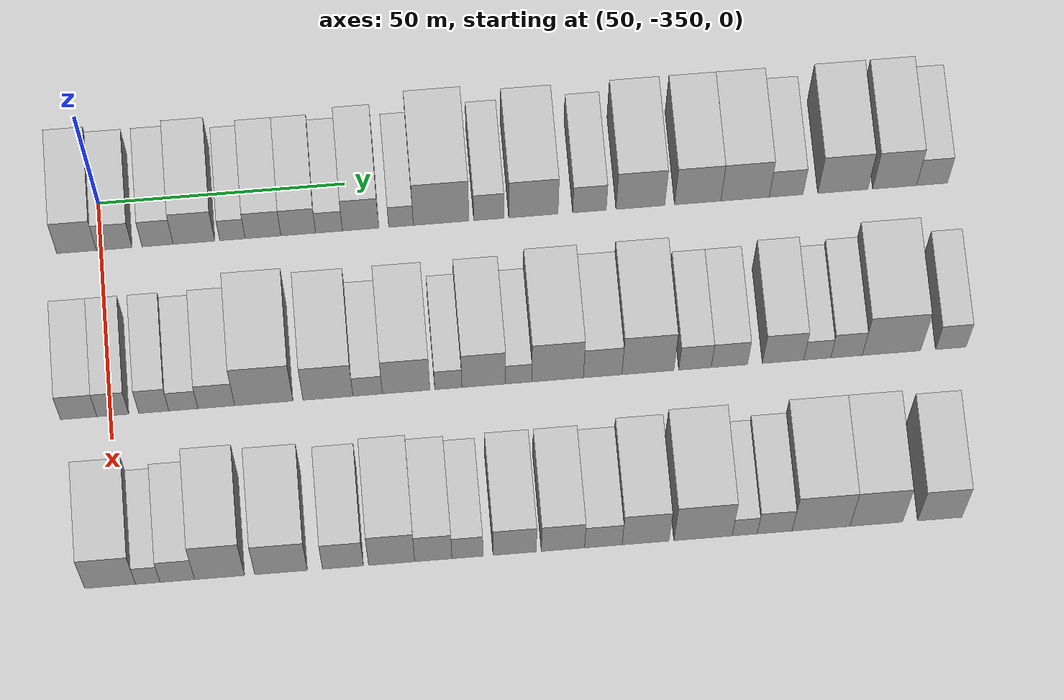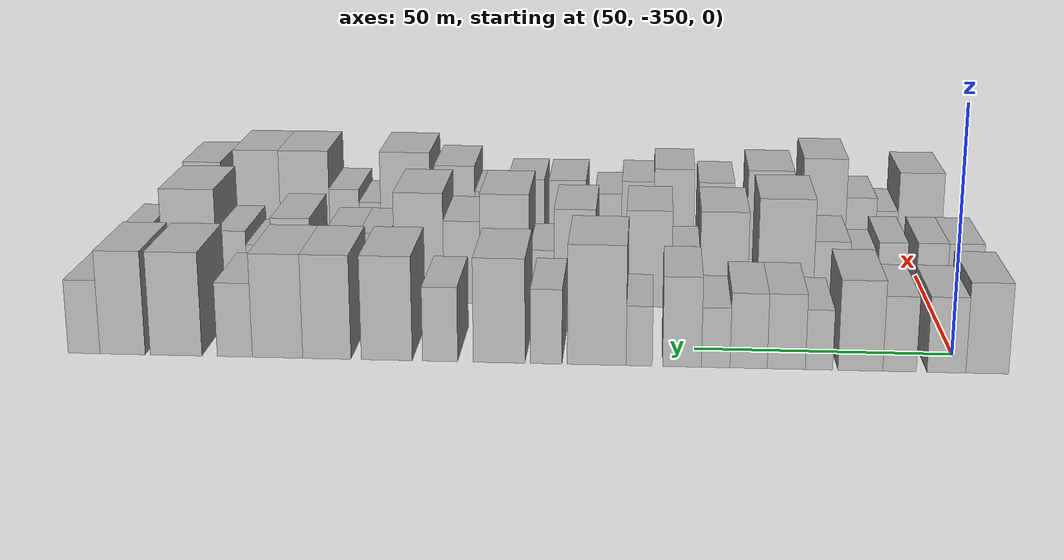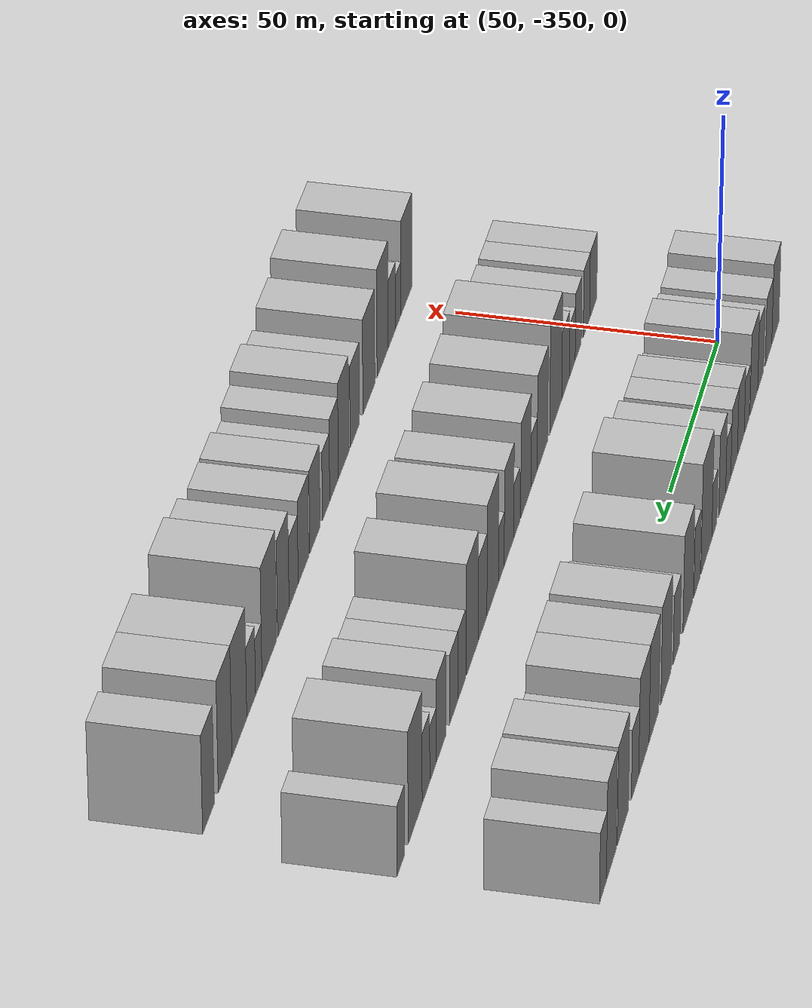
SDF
<sdf version="1.6">
 <world name="default">
  <model name="building_1">
   <static>1</static>
   <pose>50.0000 -355.0018 0 0.000000 0.000000 0.000000</pose>
   <link name="link">
    <pose>0 0 9.00 0 0 0</pose>
    <collision name="collision"><geometry><box><size>20.0000 7.9964 18.0000</size></box></geometry></collision>
    <visual name="visual">
     <cast_shadows>0</cast_shadows>
     <geometry><box><size>20.0000 7.9964 18.0000</size></box></geometry>
     <material>
      <script>
       <uri>model://HANNAS_wall/materials/scripts</uri>
       <uri>model://HANNAS_wall/materials/textures</uri>
       <name>vrc/HANNAS_wall</name>
      </script>
     </material>
    </visual>
   </link>
  </model>
  <model name="building_2">
   <static>1</static>
   <pose>50.0000 -347.3747 0 0.000000 0.000000 0.000000</pose>
   <link name="link">
    <pose>0 0 7.50 0 0 0</pose>
    <collision name="collision"><geometry><box><size>20.0000 7.2579 15.0000</size></box></geometry></collision>
    <visual name="visual">
     <cast_shadows>0</cast_shadows>
     <geometry><box><size>20.0000 7.2579 15.0000</size></box></geometry>
     <material>
      <script>
       <uri>model://HANNAS_wall/materials/scripts</uri>
       <uri>model://HANNAS_wall/materials/textures</uri>
       <name>vrc/HANNAS_wall</name>
      </script>
     </material>
    </visual>
   </link>
  </model>
  <model name="building_3">
   <static>1</static>
   <pose>50.0000 -338.5936 0 0.000000 0.000000 0.000000</pose>
   <link name="link">
    <pose>0 0 7.50 0 0 0</pose>
    <collision name="collision"><geometry><box><size>20.0000 6.3044 15.0000</size></box></geometry></collision>
    <visual name="visual">
     <cast_shadows>0</cast_shadows>
     <geometry><box><size>20.0000 6.3044 15.0000</size></box></geometry>
     <material>
      <script>
       <uri>model://HANNAS_wall/materials/scripts</uri>
       <uri>model://HANNAS_wall/materials/textures</uri>
       <name>vrc/HANNAS_wall</name>
      </script>
     </material>
    </visual>
   </link>
  </model>
  <model name="building_4">
   <static>1</static>
   <pose>50.0000 -331.2195 0 0.000000 0.000000 0.000000</pose>
   <link name="link">
    <pose>0 0 9.00 0 0 0</pose>
    <collision name="collision"><geometry><box><size>20.0000 8.4436 18.0000</size></box></geometry></collision>
    <visual name="visual">
     <cast_shadows>0</cast_shadows>
     <geometry><box><size>20.0000 8.4436 18.0000</size></box></geometry>
     <material>
      <script>
       <uri>model://HANNAS_wall/materials/scripts</uri>
       <uri>model://HANNAS_wall/materials/textures</uri>
       <name>vrc/HANNAS_wall</name>
      </script>
     </material>
    </visual>
   </link>
  </model>
  <model name="building_5">
   <static>1</static>
   <pose>50.0000 -323.4171 0 0.000000 0.000000 0.000000</pose>
   <link name="link">
    <pose>0 0 6.00 0 0 0</pose>
    <collision name="collision"><geometry><box><size>20.0000 5.1612 12.0000</size></box></geometry></collision>
    <visual name="visual">
     <cast_shadows>0</cast_shadows>
     <geometry><box><size>20.0000 5.1612 12.0000</size></box></geometry>
     <material>
      <script>
       <uri>model://HANNAS_wall/materials/scripts</uri>
       <uri>model://HANNAS_wall/materials/textures</uri>
       <name>vrc/HANNAS_wall</name>
      </script>
     </material>
    </visual>
   </link>
  </model>
  <model name="building_6">
   <static>1</static>
   <pose>50.0000 -317.2213 0 0.000000 0.000000 0.000000</pose>
   <link name="link">
    <pose>0 0 7.50 0 0 0</pose>
    <collision name="collision"><geometry><box><size>20.0000 7.2306 15.0000</size></box></geometry></collision>
    <visual name="visual">
     <cast_shadows>0</cast_shadows>
     <geometry><box><size>20.0000 7.2306 15.0000</size></box></geometry>
     <material>
      <script>
       <uri>model://HANNAS_wall/materials/scripts</uri>
       <uri>model://HANNAS_wall/materials/textures</uri>
       <name>vrc/HANNAS_wall</name>
      </script>
     </material>
    </visual>
   </link>
  </model>
  <model name="building_7">
   <static>1</static>
   <pose>50.0000 -310.0777 0 0.000000 0.000000 0.000000</pose>
   <link name="link">
    <pose>0 0 7.50 0 0 0</pose>
    <collision name="collision"><geometry><box><size>20.0000 7.0565 15.0000</size></box></geometry></collision>
    <visual name="visual">
     <cast_shadows>0</cast_shadows>
     <geometry><box><size>20.0000 7.0565 15.0000</size></box></geometry>
     <material>
      <script>
       <uri>model://HANNAS_wall/materials/scripts</uri>
       <uri>model://HANNAS_wall/materials/textures</uri>
       <name>vrc/HANNAS_wall</name>
      </script>
     </material>
    </visual>
   </link>
  </model>
  <model name="building_8">
   <static>1</static>
   <pose>50.0000 -303.8232 0 0.000000 0.000000 0.000000</pose>
   <link name="link">
    <pose>0 0 6.00 0 0 0</pose>
    <collision name="collision"><geometry><box><size>20.0000 5.4526 12.0000</size></box></geometry></collision>
    <visual name="visual">
     <cast_shadows>0</cast_shadows>
     <geometry><box><size>20.0000 5.4526 12.0000</size></box></geometry>
     <material>
      <script>
       <uri>model://HANNAS_wall/materials/scripts</uri>
       <uri>model://HANNAS_wall/materials/textures</uri>
       <name>vrc/HANNAS_wall</name>
      </script>
     </material>
    </visual>
   </link>
  </model>
  <model name="building_9">
   <static>1</static>
   <pose>50.0000 -297.4114 0 0.000000 0.000000 0.000000</pose>
   <link name="link">
    <pose>0 0 9.00 0 0 0</pose>
    <collision name="collision"><geometry><box><size>20.0000 7.3710 18.0000</size></box></geometry></collision>
    <visual name="visual">
     <cast_shadows>0</cast_shadows>
     <geometry><box><size>20.0000 7.3710 18.0000</size></box></geometry>
     <material>
      <script>
       <uri>model://HANNAS_wall/materials/scripts</uri>
       <uri>model://HANNAS_wall/materials/textures</uri>
       <name>vrc/HANNAS_wall</name>
      </script>
     </material>
    </visual>
   </link>
  </model>
  <model name="building_10">
   <static>1</static>
   <pose>50.0000 -289.2260 0 0.000000 0.000000 0.000000</pose>
   <link name="link">
    <pose>0 0 6.00 0 0 0</pose>
    <collision name="collision"><geometry><box><size>20.0000 4.9998 12.0000</size></box></geometry></collision>
    <visual name="visual">
     <cast_shadows>0</cast_shadows>
     <geometry><box><size>20.0000 4.9998 12.0000</size></box></geometry>
     <material>
      <script>
       <uri>model://HANNAS_wall/materials/scripts</uri>
       <uri>model://HANNAS_wall/materials/textures</uri>
       <name>vrc/HANNAS_wall</name>
      </script>
     </material>
    </visual>
   </link>
  </model>
  <model name="building_11">
   <static>1</static>
   <pose>50.0000 -281.0882 0 0.000000 0.000000 0.000000</pose>
   <link name="link">
    <pose>0 0 12.00 0 0 0</pose>
    <collision name="collision"><geometry><box><size>20.0000 11.2757 24.0000</size></box></geometry></collision>
    <visual name="visual">
     <cast_shadows>0</cast_shadows>
     <geometry><box><size>20.0000 11.2757 24.0000</size></box></geometry>
     <material>
      <script>
       <uri>model://HANNAS_wall/materials/scripts</uri>
       <uri>model://HANNAS_wall/materials/textures</uri>
       <name>vrc/HANNAS_wall</name>
      </script>
     </material>
    </visual>
   </link>
  </model>
  <model name="building_12">
   <static>1</static>
   <pose>50.0000 -271.3896 0 0.000000 0.000000 0.000000</pose>
   <link name="link">
    <pose>0 0 7.50 0 0 0</pose>
    <collision name="collision"><geometry><box><size>20.0000 6.1216 15.0000</size></box></geometry></collision>
    <visual name="visual">
     <cast_shadows>0</cast_shadows>
     <geometry><box><size>20.0000 6.1216 15.0000</size></box></geometry>
     <material>
      <script>
       <uri>model://HANNAS_wall/materials/scripts</uri>
       <uri>model://HANNAS_wall/materials/textures</uri>
       <name>vrc/HANNAS_wall</name>
      </script>
     </material>
    </visual>
   </link>
  </model>
  <model name="building_13">
   <static>1</static>
   <pose>50.0000 -262.3247 0 0.000000 0.000000 0.000000</pose>
   <link name="link">
    <pose>0 0 10.50 0 0 0</pose>
    <collision name="collision"><geometry><box><size>20.0000 10.0081 21.0000</size></box></geometry></collision>
    <visual name="visual">
     <cast_shadows>0</cast_shadows>
     <geometry><box><size>20.0000 10.0081 21.0000</size></box></geometry>
     <material>
      <script>
       <uri>model://HANNAS_wall/materials/scripts</uri>
       <uri>model://HANNAS_wall/materials/textures</uri>
       <name>vrc/HANNAS_wall</name>
      </script>
     </material>
    </visual>
   </link>
  </model>
  <model name="building_14">
   <static>1</static>
   <pose>50.0000 -250.9115 0 0.000000 0.000000 0.000000</pose>
   <link name="link">
    <pose>0 0 7.50 0 0 0</pose>
    <collision name="collision"><geometry><box><size>20.0000 6.8184 15.0000</size></box></geometry></collision>
    <visual name="visual">
     <cast_shadows>0</cast_shadows>
     <geometry><box><size>20.0000 6.8184 15.0000</size></box></geometry>
     <material>
      <script>
       <uri>model://HANNAS_wall/materials/scripts</uri>
       <uri>model://HANNAS_wall/materials/textures</uri>
       <name>vrc/HANNAS_wall</name>
      </script>
     </material>
    </visual>
   </link>
  </model>
  <model name="building_15">
   <static>1</static>
   <pose>50.0000 -240.5385 0 0.000000 0.000000 0.000000</pose>
   <link name="link">
    <pose>0 0 10.50 0 0 0</pose>
    <collision name="collision"><geometry><box><size>20.0000 9.9277 21.0000</size></box></geometry></collision>
    <visual name="visual">
     <cast_shadows>0</cast_shadows>
     <geometry><box><size>20.0000 9.9277 21.0000</size></box></geometry>
     <material>
      <script>
       <uri>model://HANNAS_wall/materials/scripts</uri>
       <uri>model://HANNAS_wall/materials/textures</uri>
       <name>vrc/HANNAS_wall</name>
      </script>
     </material>
    </visual>
   </link>
  </model>
  <model name="building_16">
   <static>1</static>
   <pose>50.0000 -228.8599 0 0.000000 0.000000 0.000000</pose>
   <link name="link">
    <pose>0 0 10.50 0 0 0</pose>
    <collision name="collision"><geometry><box><size>20.0000 9.4294 21.0000</size></box></geometry></collision>
    <visual name="visual">
     <cast_shadows>0</cast_shadows>
     <geometry><box><size>20.0000 9.4294 21.0000</size></box></geometry>
     <material>
      <script>
       <uri>model://HANNAS_wall/materials/scripts</uri>
       <uri>model://HANNAS_wall/materials/textures</uri>
       <name>vrc/HANNAS_wall</name>
      </script>
     </material>
    </visual>
   </link>
  </model>
  <model name="building_17">
   <static>1</static>
   <pose>50.0000 -219.2038 0 0.000000 0.000000 0.000000</pose>
   <link name="link">
    <pose>0 0 10.50 0 0 0</pose>
    <collision name="collision"><geometry><box><size>20.0000 9.8827 21.0000</size></box></geometry></collision>
    <visual name="visual">
     <cast_shadows>0</cast_shadows>
     <geometry><box><size>20.0000 9.8827 21.0000</size></box></geometry>
     <material>
      <script>
       <uri>model://HANNAS_wall/materials/scripts</uri>
       <uri>model://HANNAS_wall/materials/textures</uri>
       <name>vrc/HANNAS_wall</name>
      </script>
     </material>
    </visual>
   </link>
  </model>
  <model name="building_18">
   <static>1</static>
   <pose>50.0000 -210.8104 0 0.000000 0.000000 0.000000</pose>
   <link name="link">
    <pose>0 0 7.50 0 0 0</pose>
    <collision name="collision"><geometry><box><size>20.0000 6.9042 15.0000</size></box></geometry></collision>
    <visual name="visual">
     <cast_shadows>0</cast_shadows>
     <geometry><box><size>20.0000 6.9042 15.0000</size></box></geometry>
     <material>
      <script>
       <uri>model://HANNAS_wall/materials/scripts</uri>
       <uri>model://HANNAS_wall/materials/textures</uri>
       <name>vrc/HANNAS_wall</name>
      </script>
     </material>
    </visual>
   </link>
  </model>
  <model name="building_19">
   <static>1</static>
   <pose>50.0000 -199.2512 0 0.000000 0.000000 0.000000</pose>
   <link name="link">
    <pose>0 0 10.50 0 0 0</pose>
    <collision name="collision"><geometry><box><size>20.0000 10.2143 21.0000</size></box></geometry></collision>
    <visual name="visual">
     <cast_shadows>0</cast_shadows>
     <geometry><box><size>20.0000 10.2143 21.0000</size></box></geometry>
     <material>
      <script>
       <uri>model://HANNAS_wall/materials/scripts</uri>
       <uri>model://HANNAS_wall/materials/textures</uri>
       <name>vrc/HANNAS_wall</name>
      </script>
     </material>
    </visual>
   </link>
  </model>
  <model name="building_20">
   <static>1</static>
   <pose>50.0000 -188.6568 0 0.000000 0.000000 0.000000</pose>
   <link name="link">
    <pose>0 0 10.50 0 0 0</pose>
    <collision name="collision"><geometry><box><size>20.0000 8.9744 21.0000</size></box></geometry></collision>
    <visual name="visual">
     <cast_shadows>0</cast_shadows>
     <geometry><box><size>20.0000 8.9744 21.0000</size></box></geometry>
     <material>
      <script>
       <uri>model://HANNAS_wall/materials/scripts</uri>
       <uri>model://HANNAS_wall/materials/textures</uri>
       <name>vrc/HANNAS_wall</name>
      </script>
     </material>
    </visual>
   </link>
  </model>
  <model name="building_21">
   <static>1</static>
   <pose>50.0000 -181.0161 0 0.000000 0.000000 0.000000</pose>
   <link name="link">
    <pose>0 0 7.50 0 0 0</pose>
    <collision name="collision"><geometry><box><size>20.0000 6.3071 15.0000</size></box></geometry></collision>
    <visual name="visual">
     <cast_shadows>0</cast_shadows>
     <geometry><box><size>20.0000 6.3071 15.0000</size></box></geometry>
     <material>
      <script>
       <uri>model://HANNAS_wall/materials/scripts</uri>
       <uri>model://HANNAS_wall/materials/textures</uri>
       <name>vrc/HANNAS_wall</name>
      </script>
     </material>
    </visual>
   </link>
  </model>
  <model name="building_83">
   <static>1</static>
   <pose>85.0000 -356.3615 0 0.000000 0.000000 0.000000</pose>
   <link name="link">
    <pose>0 0 7.50 0 0 0</pose>
    <collision name="collision"><geometry><box><size>20.0000 7.2770 15.0000</size></box></geometry></collision>
    <visual name="visual">
     <cast_shadows>0</cast_shadows>
     <geometry><box><size>20.0000 7.2770 15.0000</size></box></geometry>
     <material>
      <script>
       <uri>model://HANNAS_wall/materials/scripts</uri>
       <uri>model://HANNAS_wall/materials/textures</uri>
       <name>vrc/HANNAS_wall</name>
      </script>
     </material>
    </visual>
   </link>
  </model>
  <model name="building_84">
   <static>1</static>
   <pose>85.0000 -349.5445 0 0.000000 0.000000 0.000000</pose>
   <link name="link">
    <pose>0 0 7.50 0 0 0</pose>
    <collision name="collision"><geometry><box><size>20.0000 6.3569 15.0000</size></box></geometry></collision>
    <visual name="visual">
     <cast_shadows>0</cast_shadows>
     <geometry><box><size>20.0000 6.3569 15.0000</size></box></geometry>
     <material>
      <script>
       <uri>model://HANNAS_wall/materials/scripts</uri>
       <uri>model://HANNAS_wall/materials/textures</uri>
       <name>vrc/HANNAS_wall</name>
      </script>
     </material>
    </visual>
   </link>
  </model>
  <model name="building_85">
   <static>1</static>
   <pose>85.0000 -341.3637 0 0.000000 0.000000 0.000000</pose>
   <link name="link">
    <pose>0 0 7.50 0 0 0</pose>
    <collision name="collision"><geometry><box><size>20.0000 6.0048 15.0000</size></box></geometry></collision>
    <visual name="visual">
     <cast_shadows>0</cast_shadows>
     <geometry><box><size>20.0000 6.0048 15.0000</size></box></geometry>
     <material>
      <script>
       <uri>model://HANNAS_wall/materials/scripts</uri>
       <uri>model://HANNAS_wall/materials/textures</uri>
       <name>vrc/HANNAS_wall</name>
      </script>
     </material>
    </visual>
   </link>
  </model>
  <model name="building_86">
   <static>1</static>
   <pose>85.0000 -335.4572 0 0.000000 0.000000 0.000000</pose>
   <link name="link">
    <pose>0 0 6.00 0 0 0</pose>
    <collision name="collision"><geometry><box><size>20.0000 5.8082 12.0000</size></box></geometry></collision>
    <visual name="visual">
     <cast_shadows>0</cast_shadows>
     <geometry><box><size>20.0000 5.8082 12.0000</size></box></geometry>
     <material>
      <script>
       <uri>model://HANNAS_wall/materials/scripts</uri>
       <uri>model://HANNAS_wall/materials/textures</uri>
       <name>vrc/HANNAS_wall</name>
      </script>
     </material>
    </visual>
   </link>
  </model>
  <model name="building_87">
   <static>1</static>
   <pose>85.0000 -328.8733 0 0.000000 0.000000 0.000000</pose>
   <link name="link">
    <pose>0 0 7.50 0 0 0</pose>
    <collision name="collision"><geometry><box><size>20.0000 7.3596 15.0000</size></box></geometry></collision>
    <visual name="visual">
     <cast_shadows>0</cast_shadows>
     <geometry><box><size>20.0000 7.3596 15.0000</size></box></geometry>
     <material>
      <script>
       <uri>model://HANNAS_wall/materials/scripts</uri>
       <uri>model://HANNAS_wall/materials/textures</uri>
       <name>vrc/HANNAS_wall</name>
      </script>
     </material>
    </visual>
   </link>
  </model>
  <model name="building_88">
   <static>1</static>
   <pose>85.0000 -319.3638 0 0.000000 0.000000 0.000000</pose>
   <link name="link">
    <pose>0 0 12.00 0 0 0</pose>
    <collision name="collision"><geometry><box><size>20.0000 11.6594 24.0000</size></box></geometry></collision>
    <visual name="visual">
     <cast_shadows>0</cast_shadows>
     <geometry><box><size>20.0000 11.6594 24.0000</size></box></geometry>
     <material>
      <script>
       <uri>model://HANNAS_wall/materials/scripts</uri>
       <uri>model://HANNAS_wall/materials/textures</uri>
       <name>vrc/HANNAS_wall</name>
      </script>
     </material>
    </visual>
   </link>
  </model>
  <model name="building_89">
   <static>1</static>
   <pose>85.0000 -306.5316 0 0.000000 0.000000 0.000000</pose>
   <link name="link">
    <pose>0 0 10.50 0 0 0</pose>
    <collision name="collision"><geometry><box><size>20.0000 10.0051 21.0000</size></box></geometry></collision>
    <visual name="visual">
     <cast_shadows>0</cast_shadows>
     <geometry><box><size>20.0000 10.0051 21.0000</size></box></geometry>
     <material>
      <script>
       <uri>model://HANNAS_wall/materials/scripts</uri>
       <uri>model://HANNAS_wall/materials/textures</uri>
       <name>vrc/HANNAS_wall</name>
      </script>
     </material>
    </visual>
   </link>
  </model>
  <model name="building_90">
   <static>1</static>
   <pose>85.0000 -298.5812 0 0.000000 0.000000 0.000000</pose>
   <link name="link">
    <pose>0 0 6.00 0 0 0</pose>
    <collision name="collision"><geometry><box><size>20.0000 5.8956 12.0000</size></box></geometry></collision>
    <visual name="visual">
     <cast_shadows>0</cast_shadows>
     <geometry><box><size>20.0000 5.8956 12.0000</size></box></geometry>
     <material>
      <script>
       <uri>model://HANNAS_wall/materials/scripts</uri>
       <uri>model://HANNAS_wall/materials/textures</uri>
       <name>vrc/HANNAS_wall</name>
      </script>
     </material>
    </visual>
   </link>
  </model>
  <model name="building_91">
   <static>1</static>
   <pose>85.0000 -290.8669 0 0.000000 0.000000 0.000000</pose>
   <link name="link">
    <pose>0 0 10.50 0 0 0</pose>
    <collision name="collision"><geometry><box><size>20.0000 9.5331 21.0000</size></box></geometry></collision>
    <visual name="visual">
     <cast_shadows>0</cast_shadows>
     <geometry><box><size>20.0000 9.5331 21.0000</size></box></geometry>
     <material>
      <script>
       <uri>model://HANNAS_wall/materials/scripts</uri>
       <uri>model://HANNAS_wall/materials/textures</uri>
       <name>vrc/HANNAS_wall</name>
      </script>
     </material>
    </visual>
   </link>
  </model>
  <model name="building_92">
   <static>1</static>
   <pose>85.0000 -282.3873 0 0.000000 0.000000 0.000000</pose>
   <link name="link">
    <pose>0 0 6.00 0 0 0</pose>
    <collision name="collision"><geometry><box><size>20.0000 5.4260 12.0000</size></box></geometry></collision>
    <visual name="visual">
     <cast_shadows>0</cast_shadows>
     <geometry><box><size>20.0000 5.4260 12.0000</size></box></geometry>
     <material>
      <script>
       <uri>model://HANNAS_wall/materials/scripts</uri>
       <uri>model://HANNAS_wall/materials/textures</uri>
       <name>vrc/HANNAS_wall</name>
      </script>
     </material>
    </visual>
   </link>
  </model>
  <model name="building_93">
   <static>1</static>
   <pose>85.0000 -275.2785 0 0.000000 0.000000 0.000000</pose>
   <link name="link">
    <pose>0 0 10.50 0 0 0</pose>
    <collision name="collision"><geometry><box><size>20.0000 8.7915 21.0000</size></box></geometry></collision>
    <visual name="visual">
     <cast_shadows>0</cast_shadows>
     <geometry><box><size>20.0000 8.7915 21.0000</size></box></geometry>
     <material>
      <script>
       <uri>model://HANNAS_wall/materials/scripts</uri>
       <uri>model://HANNAS_wall/materials/textures</uri>
       <name>vrc/HANNAS_wall</name>
      </script>
     </material>
    </visual>
   </link>
  </model>
  <model name="building_94">
   <static>1</static>
   <pose>85.0000 -268.2730 0 0.000000 0.000000 0.000000</pose>
   <link name="link">
    <pose>0 0 6.00 0 0 0</pose>
    <collision name="collision"><geometry><box><size>20.0000 5.2194 12.0000</size></box></geometry></collision>
    <visual name="visual">
     <cast_shadows>0</cast_shadows>
     <geometry><box><size>20.0000 5.2194 12.0000</size></box></geometry>
     <material>
      <script>
       <uri>model://HANNAS_wall/materials/scripts</uri>
       <uri>model://HANNAS_wall/materials/textures</uri>
       <name>vrc/HANNAS_wall</name>
      </script>
     </material>
    </visual>
   </link>
  </model>
  <model name="building_95">
   <static>1</static>
   <pose>85.0000 -260.4725 0 0.000000 0.000000 0.000000</pose>
   <link name="link">
    <pose>0 0 12.00 0 0 0</pose>
    <collision name="collision"><geometry><box><size>20.0000 10.3818 24.0000</size></box></geometry></collision>
    <visual name="visual">
     <cast_shadows>0</cast_shadows>
     <geometry><box><size>20.0000 10.3818 24.0000</size></box></geometry>
     <material>
      <script>
       <uri>model://HANNAS_wall/materials/scripts</uri>
       <uri>model://HANNAS_wall/materials/textures</uri>
       <name>vrc/HANNAS_wall</name>
      </script>
     </material>
    </visual>
   </link>
  </model>
  <model name="building_96">
   <static>1</static>
   <pose>85.0000 -251.4131 0 0.000000 0.000000 0.000000</pose>
   <link name="link">
    <pose>0 0 9.00 0 0 0</pose>
    <collision name="collision"><geometry><box><size>20.0000 7.7370 18.0000</size></box></geometry></collision>
    <visual name="visual">
     <cast_shadows>0</cast_shadows>
     <geometry><box><size>20.0000 7.7370 18.0000</size></box></geometry>
     <material>
      <script>
       <uri>model://HANNAS_wall/materials/scripts</uri>
       <uri>model://HANNAS_wall/materials/textures</uri>
       <name>vrc/HANNAS_wall</name>
      </script>
     </material>
    </visual>
   </link>
  </model>
  <model name="building_97">
   <static>1</static>
   <pose>85.0000 -242.3203 0 0.000000 0.000000 0.000000</pose>
   <link name="link">
    <pose>0 0 12.00 0 0 0</pose>
    <collision name="collision"><geometry><box><size>20.0000 10.4485 24.0000</size></box></geometry></collision>
    <visual name="visual">
     <cast_shadows>0</cast_shadows>
     <geometry><box><size>20.0000 10.4485 24.0000</size></box></geometry>
     <material>
      <script>
       <uri>model://HANNAS_wall/materials/scripts</uri>
       <uri>model://HANNAS_wall/materials/textures</uri>
       <name>vrc/HANNAS_wall</name>
      </script>
     </material>
    </visual>
   </link>
  </model>
  <model name="building_98">
   <static>1</static>
   <pose>85.0000 -232.8315 0 0.000000 0.000000 0.000000</pose>
   <link name="link">
    <pose>0 0 7.50 0 0 0</pose>
    <collision name="collision"><geometry><box><size>20.0000 6.5291 15.0000</size></box></geometry></collision>
    <visual name="visual">
     <cast_shadows>0</cast_shadows>
     <geometry><box><size>20.0000 6.5291 15.0000</size></box></geometry>
     <material>
      <script>
       <uri>model://HANNAS_wall/materials/scripts</uri>
       <uri>model://HANNAS_wall/materials/textures</uri>
       <name>vrc/HANNAS_wall</name>
      </script>
     </material>
    </visual>
   </link>
  </model>
  <model name="building_99">
   <static>1</static>
   <pose>85.0000 -225.9193 0 0.000000 0.000000 0.000000</pose>
   <link name="link">
    <pose>0 0 7.50 0 0 0</pose>
    <collision name="collision"><geometry><box><size>20.0000 7.2953 15.0000</size></box></geometry></collision>
    <visual name="visual">
     <cast_shadows>0</cast_shadows>
     <geometry><box><size>20.0000 7.2953 15.0000</size></box></geometry>
     <material>
      <script>
       <uri>model://HANNAS_wall/materials/scripts</uri>
       <uri>model://HANNAS_wall/materials/textures</uri>
       <name>vrc/HANNAS_wall</name>
      </script>
     </material>
    </visual>
   </link>
  </model>
  <model name="building_100">
   <static>1</static>
   <pose>85.0000 -215.1066 0 0.000000 0.000000 0.000000</pose>
   <link name="link">
    <pose>0 0 9.00 0 0 0</pose>
    <collision name="collision"><geometry><box><size>20.0000 8.3299 18.0000</size></box></geometry></collision>
    <visual name="visual">
     <cast_shadows>0</cast_shadows>
     <geometry><box><size>20.0000 8.3299 18.0000</size></box></geometry>
     <material>
      <script>
       <uri>model://HANNAS_wall/materials/scripts</uri>
       <uri>model://HANNAS_wall/materials/textures</uri>
       <name>vrc/HANNAS_wall</name>
      </script>
     </material>
    </visual>
   </link>
  </model>
  <model name="building_101">
   <static>1</static>
   <pose>85.0000 -208.2094 0 0.000000 0.000000 0.000000</pose>
   <link name="link">
    <pose>0 0 6.00 0 0 0</pose>
    <collision name="collision"><geometry><box><size>20.0000 5.4647 12.0000</size></box></geometry></collision>
    <visual name="visual">
     <cast_shadows>0</cast_shadows>
     <geometry><box><size>20.0000 5.4647 12.0000</size></box></geometry>
     <material>
      <script>
       <uri>model://HANNAS_wall/materials/scripts</uri>
       <uri>model://HANNAS_wall/materials/textures</uri>
       <name>vrc/HANNAS_wall</name>
      </script>
     </material>
    </visual>
   </link>
  </model>
  <model name="building_102">
   <static>1</static>
   <pose>85.0000 -202.2916 0 0.000000 0.000000 0.000000</pose>
   <link name="link">
    <pose>0 0 7.50 0 0 0</pose>
    <collision name="collision"><geometry><box><size>20.0000 6.3708 15.0000</size></box></geometry></collision>
    <visual name="visual">
     <cast_shadows>0</cast_shadows>
     <geometry><box><size>20.0000 6.3708 15.0000</size></box></geometry>
     <material>
      <script>
       <uri>model://HANNAS_wall/materials/scripts</uri>
       <uri>model://HANNAS_wall/materials/textures</uri>
       <name>vrc/HANNAS_wall</name>
      </script>
     </material>
    </visual>
   </link>
  </model>
  <model name="building_103">
   <static>1</static>
   <pose>85.0000 -193.2268 0 0.000000 0.000000 0.000000</pose>
   <link name="link">
    <pose>0 0 12.00 0 0 0</pose>
    <collision name="collision"><geometry><box><size>20.0000 11.7588 24.0000</size></box></geometry></collision>
    <visual name="visual">
     <cast_shadows>0</cast_shadows>
     <geometry><box><size>20.0000 11.7588 24.0000</size></box></geometry>
     <material>
      <script>
       <uri>model://HANNAS_wall/materials/scripts</uri>
       <uri>model://HANNAS_wall/materials/textures</uri>
       <name>vrc/HANNAS_wall</name>
      </script>
     </material>
    </visual>
   </link>
  </model>
  <model name="building_104">
   <static>1</static>
   <pose>85.0000 -181.2729 0 0.000000 0.000000 0.000000</pose>
   <link name="link">
    <pose>0 0 7.50 0 0 0</pose>
    <collision name="collision"><geometry><box><size>20.0000 6.1491 15.0000</size></box></geometry></collision>
    <visual name="visual">
     <cast_shadows>0</cast_shadows>
     <geometry><box><size>20.0000 6.1491 15.0000</size></box></geometry>
     <material>
      <script>
       <uri>model://HANNAS_wall/materials/scripts</uri>
       <uri>model://HANNAS_wall/materials/textures</uri>
       <name>vrc/HANNAS_wall</name>
      </script>
     </material>
    </visual>
   </link>
  </model>
  <model name="building_167">
   <static>1</static>
   <pose>120.0000 -351.9945 0 0.000000 0.000000 0.000000</pose>
   <link name="link">
    <pose>0 0 10.50 0 0 0</pose>
    <collision name="collision"><geometry><box><size>20.0000 10.0111 21.0000</size></box></geometry></collision>
    <visual name="visual">
     <cast_shadows>0</cast_shadows>
     <geometry><box><size>20.0000 10.0111 21.0000</size></box></geometry>
     <material>
      <script>
       <uri>model://HANNAS_wall/materials/scripts</uri>
       <uri>model://HANNAS_wall/materials/textures</uri>
       <name>vrc/HANNAS_wall</name>
      </script>
     </material>
    </visual>
   </link>
  </model>
  <model name="building_168">
   <static>1</static>
   <pose>120.0000 -344.5726 0 0.000000 0.000000 0.000000</pose>
   <link name="link">
    <pose>0 0 6.00 0 0 0</pose>
    <collision name="collision"><geometry><box><size>20.0000 4.8326 12.0000</size></box></geometry></collision>
    <visual name="visual">
     <cast_shadows>0</cast_shadows>
     <geometry><box><size>20.0000 4.8326 12.0000</size></box></geometry>
     <material>
      <script>
       <uri>model://HANNAS_wall/materials/scripts</uri>
       <uri>model://HANNAS_wall/materials/textures</uri>
       <name>vrc/HANNAS_wall</name>
      </script>
     </material>
    </visual>
   </link>
  </model>
  <model name="building_169">
   <static>1</static>
   <pose>120.0000 -338.7404 0 0.000000 0.000000 0.000000</pose>
   <link name="link">
    <pose>0 0 7.50 0 0 0</pose>
    <collision name="collision"><geometry><box><size>20.0000 6.8318 15.0000</size></box></geometry></collision>
    <visual name="visual">
     <cast_shadows>0</cast_shadows>
     <geometry><box><size>20.0000 6.8318 15.0000</size></box></geometry>
     <material>
      <script>
       <uri>model://HANNAS_wall/materials/scripts</uri>
       <uri>model://HANNAS_wall/materials/textures</uri>
       <name>vrc/HANNAS_wall</name>
      </script>
     </material>
    </visual>
   </link>
  </model>
  <model name="building_170">
   <static>1</static>
   <pose>120.0000 -330.3863 0 0.000000 0.000000 0.000000</pose>
   <link name="link">
    <pose>0 0 12.00 0 0 0</pose>
    <collision name="collision"><geometry><box><size>20.0000 9.8765 24.0000</size></box></geometry></collision>
    <visual name="visual">
     <cast_shadows>0</cast_shadows>
     <geometry><box><size>20.0000 9.8765 24.0000</size></box></geometry>
     <material>
      <script>
       <uri>model://HANNAS_wall/materials/scripts</uri>
       <uri>model://HANNAS_wall/materials/textures</uri>
       <name>vrc/HANNAS_wall</name>
      </script>
     </material>
    </visual>
   </link>
  </model>
  <model name="building_171">
   <static>1</static>
   <pose>120.0000 -318.2537 0 0.000000 0.000000 0.000000</pose>
   <link name="link">
    <pose>0 0 10.50 0 0 0</pose>
    <collision name="collision"><geometry><box><size>20.0000 10.3887 21.0000</size></box></geometry></collision>
    <visual name="visual">
     <cast_shadows>0</cast_shadows>
     <geometry><box><size>20.0000 10.3887 21.0000</size></box></geometry>
     <material>
      <script>
       <uri>model://HANNAS_wall/materials/scripts</uri>
       <uri>model://HANNAS_wall/materials/textures</uri>
       <name>vrc/HANNAS_wall</name>
      </script>
     </material>
    </visual>
   </link>
  </model>
  <model name="building_172">
   <static>1</static>
   <pose>120.0000 -306.0085 0 0.000000 0.000000 0.000000</pose>
   <link name="link">
    <pose>0 0 9.00 0 0 0</pose>
    <collision name="collision"><geometry><box><size>20.0000 8.1017 18.0000</size></box></geometry></collision>
    <visual name="visual">
     <cast_shadows>0</cast_shadows>
     <geometry><box><size>20.0000 8.1017 18.0000</size></box></geometry>
     <material>
      <script>
       <uri>model://HANNAS_wall/materials/scripts</uri>
       <uri>model://HANNAS_wall/materials/textures</uri>
       <name>vrc/HANNAS_wall</name>
      </script>
     </material>
    </visual>
   </link>
  </model>
  <model name="building_173">
   <static>1</static>
   <pose>120.0000 -296.3943 0 0.000000 0.000000 0.000000</pose>
   <link name="link">
    <pose>0 0 10.50 0 0 0</pose>
    <collision name="collision"><geometry><box><size>20.0000 9.1266 21.0000</size></box></geometry></collision>
    <visual name="visual">
     <cast_shadows>0</cast_shadows>
     <geometry><box><size>20.0000 9.1266 21.0000</size></box></geometry>
     <material>
      <script>
       <uri>model://HANNAS_wall/materials/scripts</uri>
       <uri>model://HANNAS_wall/materials/textures</uri>
       <name>vrc/HANNAS_wall</name>
      </script>
     </material>
    </visual>
   </link>
  </model>
  <model name="building_174">
   <static>1</static>
   <pose>120.0000 -288.1481 0 0.000000 0.000000 0.000000</pose>
   <link name="link">
    <pose>0 0 9.00 0 0 0</pose>
    <collision name="collision"><geometry><box><size>20.0000 7.3657 18.0000</size></box></geometry></collision>
    <visual name="visual">
     <cast_shadows>0</cast_shadows>
     <geometry><box><size>20.0000 7.3657 18.0000</size></box></geometry>
     <material>
      <script>
       <uri>model://HANNAS_wall/materials/scripts</uri>
       <uri>model://HANNAS_wall/materials/textures</uri>
       <name>vrc/HANNAS_wall</name>
      </script>
     </material>
    </visual>
   </link>
  </model>
  <model name="building_175">
   <static>1</static>
   <pose>120.0000 -281.3866 0 0.000000 0.000000 0.000000</pose>
   <link name="link">
    <pose>0 0 7.50 0 0 0</pose>
    <collision name="collision"><geometry><box><size>20.0000 6.1573 15.0000</size></box></geometry></collision>
    <visual name="visual">
     <cast_shadows>0</cast_shadows>
     <geometry><box><size>20.0000 6.1573 15.0000</size></box></geometry>
     <material>
      <script>
       <uri>model://HANNAS_wall/materials/scripts</uri>
       <uri>model://HANNAS_wall/materials/textures</uri>
       <name>vrc/HANNAS_wall</name>
      </script>
     </material>
    </visual>
   </link>
  </model>
  <model name="building_176">
   <static>1</static>
   <pose>120.0000 -272.0282 0 0.000000 0.000000 0.000000</pose>
   <link name="link">
    <pose>0 0 9.00 0 0 0</pose>
    <collision name="collision"><geometry><box><size>20.0000 8.5595 18.0000</size></box></geometry></collision>
    <visual name="visual">
     <cast_shadows>0</cast_shadows>
     <geometry><box><size>20.0000 8.5595 18.0000</size></box></geometry>
     <material>
      <script>
       <uri>model://HANNAS_wall/materials/scripts</uri>
       <uri>model://HANNAS_wall/materials/textures</uri>
       <name>vrc/HANNAS_wall</name>
      </script>
     </material>
    </visual>
   </link>
  </model>
  <model name="building_177">
   <static>1</static>
   <pose>120.0000 -262.4660 0 0.000000 0.000000 0.000000</pose>
   <link name="link">
    <pose>0 0 9.00 0 0 0</pose>
    <collision name="collision"><geometry><box><size>20.0000 8.5649 18.0000</size></box></geometry></collision>
    <visual name="visual">
     <cast_shadows>0</cast_shadows>
     <geometry><box><size>20.0000 8.5649 18.0000</size></box></geometry>
     <material>
      <script>
       <uri>model://HANNAS_wall/materials/scripts</uri>
       <uri>model://HANNAS_wall/materials/textures</uri>
       <name>vrc/HANNAS_wall</name>
      </script>
     </material>
    </visual>
   </link>
  </model>
  <model name="building_178">
   <static>1</static>
   <pose>120.0000 -254.4571 0 0.000000 0.000000 0.000000</pose>
   <link name="link">
    <pose>0 0 7.50 0 0 0</pose>
    <collision name="collision"><geometry><box><size>20.0000 7.4528 15.0000</size></box></geometry></collision>
    <visual name="visual">
     <cast_shadows>0</cast_shadows>
     <geometry><box><size>20.0000 7.4528 15.0000</size></box></geometry>
     <material>
      <script>
       <uri>model://HANNAS_wall/materials/scripts</uri>
       <uri>model://HANNAS_wall/materials/textures</uri>
       <name>vrc/HANNAS_wall</name>
      </script>
     </material>
    </visual>
   </link>
  </model>
  <model name="building_179">
   <static>1</static>
   <pose>120.0000 -246.0916 0 0.000000 0.000000 0.000000</pose>
   <link name="link">
    <pose>0 0 10.50 0 0 0</pose>
    <collision name="collision"><geometry><box><size>20.0000 9.2782 21.0000</size></box></geometry></collision>
    <visual name="visual">
     <cast_shadows>0</cast_shadows>
     <geometry><box><size>20.0000 9.2782 21.0000</size></box></geometry>
     <material>
      <script>
       <uri>model://HANNAS_wall/materials/scripts</uri>
       <uri>model://HANNAS_wall/materials/textures</uri>
       <name>vrc/HANNAS_wall</name>
      </script>
     </material>
    </visual>
   </link>
  </model>
  <model name="building_180">
   <static>1</static>
   <pose>120.0000 -234.6764 0 0.000000 0.000000 0.000000</pose>
   <link name="link">
    <pose>0 0 12.00 0 0 0</pose>
    <collision name="collision"><geometry><box><size>20.0000 11.5521 24.0000</size></box></geometry></collision>
    <visual name="visual">
     <cast_shadows>0</cast_shadows>
     <geometry><box><size>20.0000 11.5521 24.0000</size></box></geometry>
     <material>
      <script>
       <uri>model://HANNAS_wall/materials/scripts</uri>
       <uri>model://HANNAS_wall/materials/textures</uri>
       <name>vrc/HANNAS_wall</name>
      </script>
     </material>
    </visual>
   </link>
  </model>
  <model name="building_181">
   <static>1</static>
   <pose>120.0000 -226.3959 0 0.000000 0.000000 0.000000</pose>
   <link name="link">
    <pose>0 0 6.00 0 0 0</pose>
    <collision name="collision"><geometry><box><size>20.0000 5.0089 12.0000</size></box></geometry></collision>
    <visual name="visual">
     <cast_shadows>0</cast_shadows>
     <geometry><box><size>20.0000 5.0089 12.0000</size></box></geometry>
     <material>
      <script>
       <uri>model://HANNAS_wall/materials/scripts</uri>
       <uri>model://HANNAS_wall/materials/textures</uri>
       <name>vrc/HANNAS_wall</name>
      </script>
     </material>
    </visual>
   </link>
  </model>
  <model name="building_182">
   <static>1</static>
   <pose>120.0000 -220.4311 0 0.000000 0.000000 0.000000</pose>
   <link name="link">
    <pose>0 0 7.50 0 0 0</pose>
    <collision name="collision"><geometry><box><size>20.0000 6.9206 15.0000</size></box></geometry></collision>
    <visual name="visual">
     <cast_shadows>0</cast_shadows>
     <geometry><box><size>20.0000 6.9206 15.0000</size></box></geometry>
     <material>
      <script>
       <uri>model://HANNAS_wall/materials/scripts</uri>
       <uri>model://HANNAS_wall/materials/textures</uri>
       <name>vrc/HANNAS_wall</name>
      </script>
     </material>
    </visual>
   </link>
  </model>
  <model name="building_183">
   <static>1</static>
   <pose>120.0000 -211.2087 0 0.000000 0.000000 0.000000</pose>
   <link name="link">
    <pose>0 0 12.00 0 0 0</pose>
    <collision name="collision"><geometry><box><size>20.0000 11.5242 24.0000</size></box></geometry></collision>
    <visual name="visual">
     <cast_shadows>0</cast_shadows>
     <geometry><box><size>20.0000 11.5242 24.0000</size></box></geometry>
     <material>
      <script>
       <uri>model://HANNAS_wall/materials/scripts</uri>
       <uri>model://HANNAS_wall/materials/textures</uri>
       <name>vrc/HANNAS_wall</name>
      </script>
     </material>
    </visual>
   </link>
  </model>
  <model name="building_184">
   <static>1</static>
   <pose>120.0000 -200.2118 0 0.000000 0.000000 0.000000</pose>
   <link name="link">
    <pose>0 0 12.00 0 0 0</pose>
    <collision name="collision"><geometry><box><size>20.0000 10.4697 24.0000</size></box></geometry></collision>
    <visual name="visual">
     <cast_shadows>0</cast_shadows>
     <geometry><box><size>20.0000 10.4697 24.0000</size></box></geometry>
     <material>
      <script>
       <uri>model://HANNAS_wall/materials/scripts</uri>
       <uri>model://HANNAS_wall/materials/textures</uri>
       <name>vrc/HANNAS_wall</name>
      </script>
     </material>
    </visual>
   </link>
  </model>
  <model name="building_185">
   <static>1</static>
   <pose>120.0000 -187.5661 0 0.000000 0.000000 0.000000</pose>
   <link name="link">
    <pose>0 0 10.50 0 0 0</pose>
    <collision name="collision"><geometry><box><size>20.0000 8.8217 21.0000</size></box></geometry></collision>
    <visual name="visual">
     <cast_shadows>0</cast_shadows>
     <geometry><box><size>20.0000 8.8217 21.0000</size></box></geometry>
     <material>
      <script>
       <uri>model://HANNAS_wall/materials/scripts</uri>
       <uri>model://HANNAS_wall/materials/textures</uri>
       <name>vrc/HANNAS_wall</name>
      </script>
     </material>
    </visual>
   </link>
  </model>
 </world>
</sdf>
